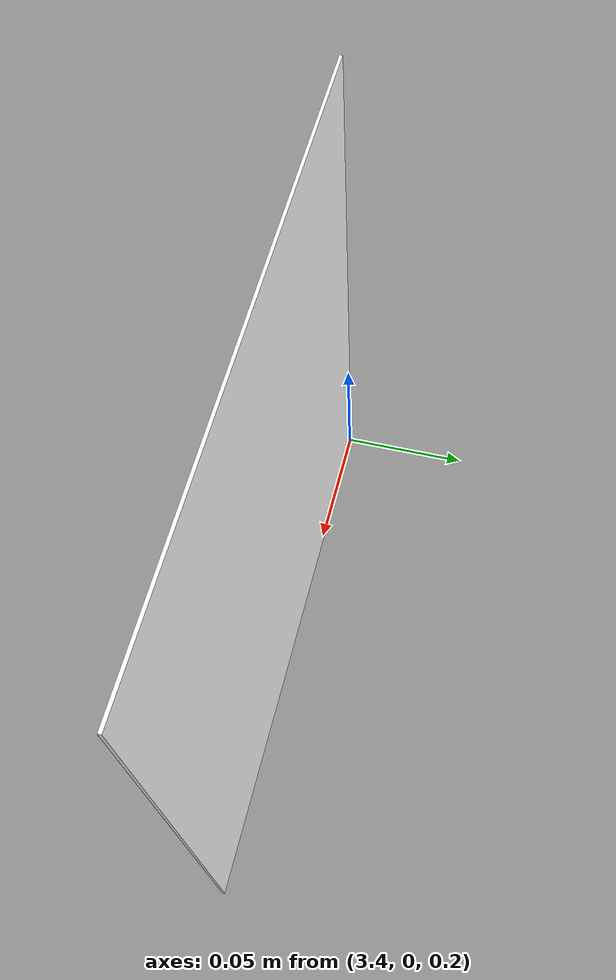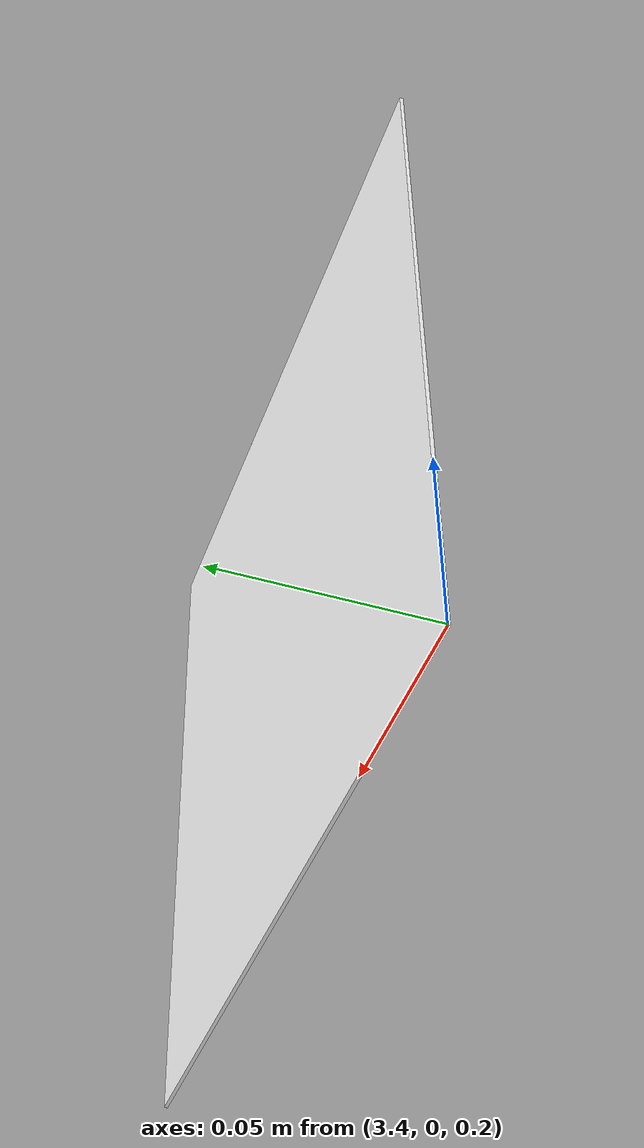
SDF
<?xml version="1.0" ?>
<sdf version="1.8">
    <model name='apriltag_marker'>
        <static>true</static>
        <pose>3.5 0 0.3 0 0 0</pose>
        <link name='marker_link'>
            <visual name='marker_visual'>
                <geometry>
                    <box>
                        <size>0.2 0.001 0.2</size>
                    </box>
                </geometry>
                <material>
                    <ambient>1 1 1 1</ambient>
                    <diffuse>1 1 1 1</diffuse>
                    <emissive>0.2 0.2 0.2 1</emissive>
                </material>
            </visual>
            <visual name='tag_visual'>
                <pose>0 -0.001 0 0 0 0</pose>
                <geometry>
                    <box>
                        <size>0.15 0.001 0.15</size>
                    </box>
                </geometry>
                <material>
                    <ambient>0 0 0 1</ambient>
                    <diffuse>0 0 0 1</diffuse>
                    <script>
                        <uri>model://apriltag_36h11</uri>
                        <name>tag36_11_00000</name>
                    </script>
                </material>
            </visual>
        </link>
    </model>
</sdf>
